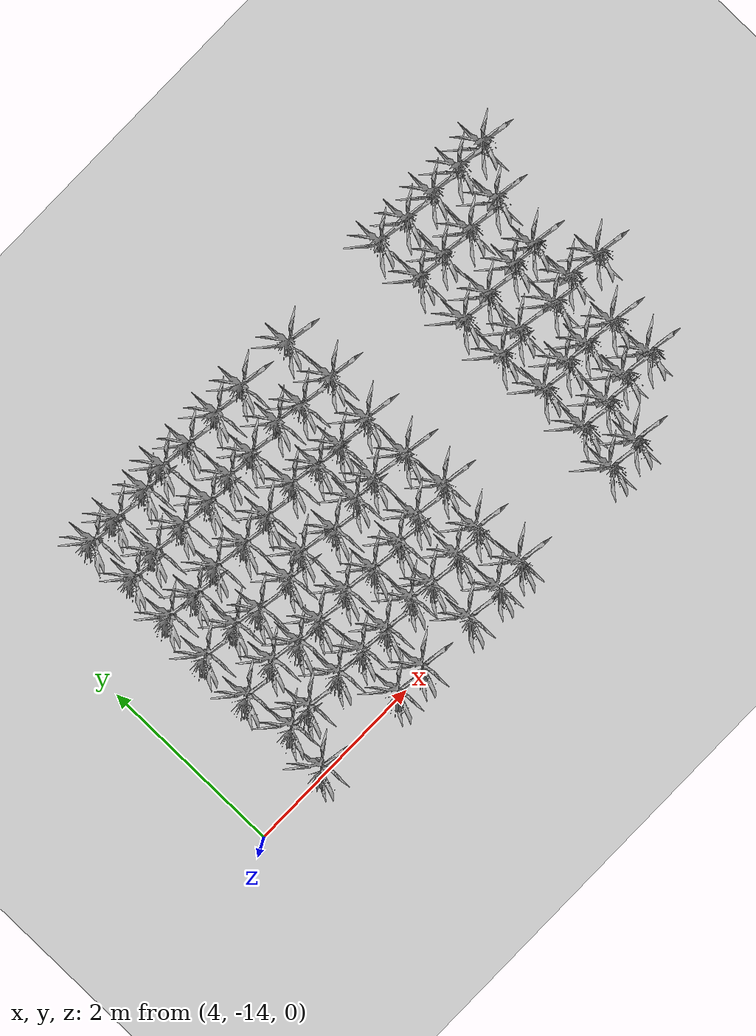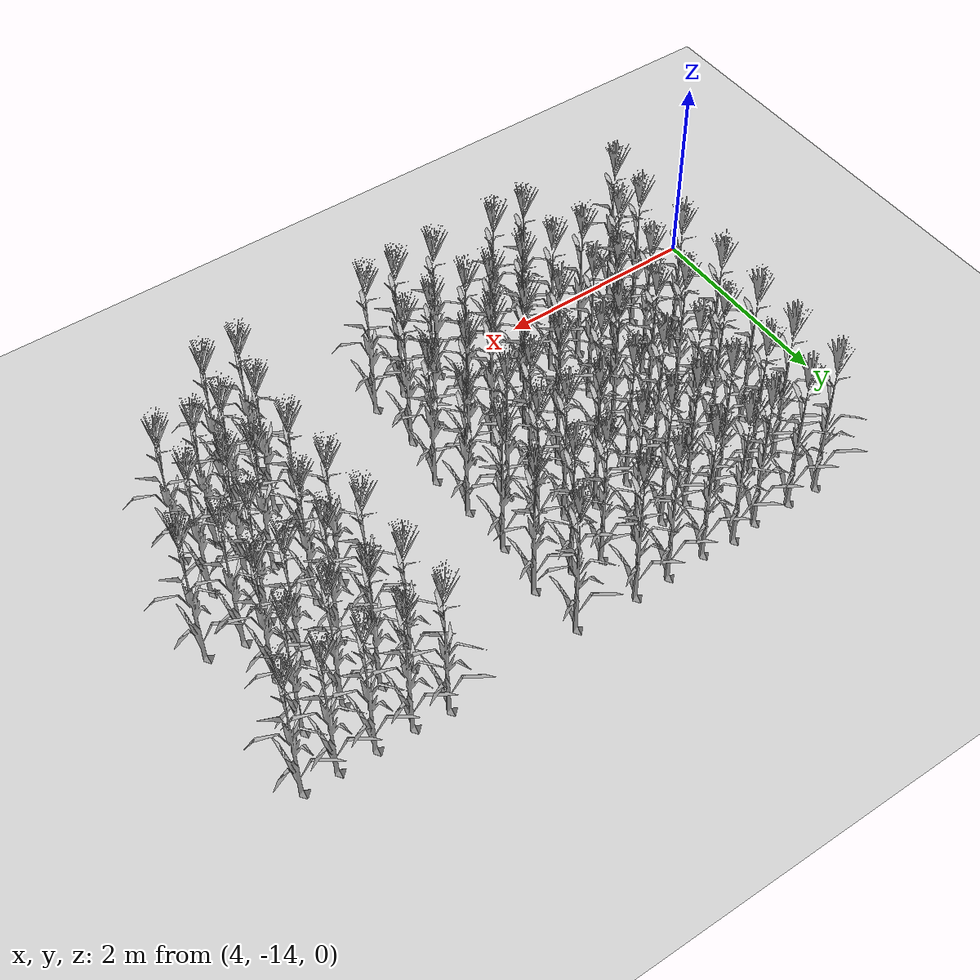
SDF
<sdf version="1.7">
 <world name="farmland_world">
  <model name="ground_plane">
   <static>1</static>
   <link name="link">
    <collision name="collision">
     <geometry><plane><normal>0 0 1</normal><size>40.0 40.0</size></plane></geometry>
     <surface><friction><ode><mu>100</mu><mu2>50</mu2></ode></friction></surface>
    </collision>
    <visual name="visual">
     <cast_shadows>0</cast_shadows>
     <geometry><plane><normal>0 0 1</normal><size>40.0 40.0</size></plane></geometry>
     <material>
      <script><uri>file://media/materials/scripts/gazebo.material</uri><name>Gazebo/Grey</name></script>
     </material>
    </visual>
   </link>
  </model>
  <model name="tree_3_17">
   <static>1</static>
   <link name="link">
    <collision name="collision">
     <geometry><mesh><uri>model://Corn_low_poly/corn.obj</uri><scale>1 1 1</scale></mesh></geometry>
     <surface><friction><ode><mu>100</mu><mu2>50</mu2></ode></friction></surface>
    </collision>
    <visual name="visual">
     <geometry><mesh><uri>model://Corn_low_poly/corn.obj</uri><scale>1 1 1</scale></mesh></geometry>
    </visual>
   </link>
   <pose>4.991810377801045 -10.801920285262085 0 0 0 0</pose>
  </model>
  <model name="tree_3_18">
   <static>1</static>
   <link name="link">
    <collision name="collision">
     <geometry><mesh><uri>model://Corn_low_poly/corn.obj</uri><scale>1 1 1</scale></mesh></geometry>
     <surface><friction><ode><mu>100</mu><mu2>50</mu2></ode></friction></surface>
    </collision>
    <visual name="visual">
     <geometry><mesh><uri>model://Corn_low_poly/corn.obj</uri><scale>1 1 1</scale></mesh></geometry>
    </visual>
   </link>
   <pose>5.014223362123942 -11.323181069916757 0 0 0 0</pose>
  </model>
  <model name="tree_3_19">
   <static>1</static>
   <link name="link">
    <collision name="collision">
     <geometry><mesh><uri>model://Corn_low_poly/corn.obj</uri><scale>1 1 1</scale></mesh></geometry>
     <surface><friction><ode><mu>100</mu><mu2>50</mu2></ode></friction></surface>
    </collision>
    <visual name="visual">
     <geometry><mesh><uri>model://Corn_low_poly/corn.obj</uri><scale>1 1 1</scale></mesh></geometry>
    </visual>
   </link>
   <pose>4.977002538412344 -11.818061326801354 0 0 0 0</pose>
  </model>
  <model name="tree_3_20">
   <static>1</static>
   <link name="link">
    <collision name="collision">
     <geometry><mesh><uri>model://Corn_low_poly/corn.obj</uri><scale>1 1 1</scale></mesh></geometry>
     <surface><friction><ode><mu>100</mu><mu2>50</mu2></ode></friction></surface>
    </collision>
    <visual name="visual">
     <geometry><mesh><uri>model://Corn_low_poly/corn.obj</uri><scale>1 1 1</scale></mesh></geometry>
    </visual>
   </link>
   <pose>4.9503473289990865 -12.331253659682861 0 0 0 0</pose>
  </model>
  <model name="tree_3_21">
   <static>1</static>
   <link name="link">
    <collision name="collision">
     <geometry><mesh><uri>model://Corn_low_poly/corn.obj</uri><scale>1 1 1</scale></mesh></geometry>
     <surface><friction><ode><mu>100</mu><mu2>50</mu2></ode></friction></surface>
    </collision>
    <visual name="visual">
     <geometry><mesh><uri>model://Corn_low_poly/corn.obj</uri><scale>1 1 1</scale></mesh></geometry>
    </visual>
   </link>
   <pose>4.950692715688161 -12.877011293198573 0 0 0 0</pose>
  </model>
  <model name="tree_3_22">
   <static>1</static>
   <link name="link">
    <collision name="collision">
     <geometry><mesh><uri>model://Corn_low_poly/corn.obj</uri><scale>1 1 1</scale></mesh></geometry>
     <surface><friction><ode><mu>100</mu><mu2>50</mu2></ode></friction></surface>
    </collision>
    <visual name="visual">
     <geometry><mesh><uri>model://Corn_low_poly/corn.obj</uri><scale>1 1 1</scale></mesh></geometry>
    </visual>
   </link>
   <pose>5.0336981658699775 -13.384898444191366 0 0 0 0</pose>
  </model>
  <model name="tree_3_23">
   <static>1</static>
   <link name="link">
    <collision name="collision">
     <geometry><mesh><uri>model://Corn_low_poly/corn.obj</uri><scale>1 1 1</scale></mesh></geometry>
     <surface><friction><ode><mu>100</mu><mu2>50</mu2></ode></friction></surface>
    </collision>
    <visual name="visual">
     <geometry><mesh><uri>model://Corn_low_poly/corn.obj</uri><scale>1 1 1</scale></mesh></geometry>
    </visual>
   </link>
   <pose>4.950750571066764 -13.860084449998384 0 0 0 0</pose>
  </model>
  <model name="tree_3_47">
   <static>1</static>
   <link name="link">
    <collision name="collision">
     <geometry><mesh><uri>model://Corn_low_poly/corn.obj</uri><scale>1 1 1</scale></mesh></geometry>
     <surface><friction><ode><mu>100</mu><mu2>50</mu2></ode></friction></surface>
    </collision>
    <visual name="visual">
     <geometry><mesh><uri>model://Corn_low_poly/corn.obj</uri><scale>1 1 1</scale></mesh></geometry>
    </visual>
   </link>
   <pose>5.308392694446498 -10.807268321788406 0 0 0 0</pose>
  </model>
  <model name="tree_3_48">
   <static>1</static>
   <link name="link">
    <collision name="collision">
     <geometry><mesh><uri>model://Corn_low_poly/corn.obj</uri><scale>1 1 1</scale></mesh></geometry>
     <surface><friction><ode><mu>100</mu><mu2>50</mu2></ode></friction></surface>
    </collision>
    <visual name="visual">
     <geometry><mesh><uri>model://Corn_low_poly/corn.obj</uri><scale>1 1 1</scale></mesh></geometry>
    </visual>
   </link>
   <pose>5.330645024486984 -11.293162572722004 0 0 0 0</pose>
  </model>
  <model name="tree_3_49">
   <static>1</static>
   <link name="link">
    <collision name="collision">
     <geometry><mesh><uri>model://Corn_low_poly/corn.obj</uri><scale>1 1 1</scale></mesh></geometry>
     <surface><friction><ode><mu>100</mu><mu2>50</mu2></ode></friction></surface>
    </collision>
    <visual name="visual">
     <geometry><mesh><uri>model://Corn_low_poly/corn.obj</uri><scale>1 1 1</scale></mesh></geometry>
    </visual>
   </link>
   <pose>5.318751534027271 -11.858264309540829 0 0 0 0</pose>
  </model>
  <model name="tree_3_50">
   <static>1</static>
   <link name="link">
    <collision name="collision">
     <geometry><mesh><uri>model://Corn_low_poly/corn.obj</uri><scale>1 1 1</scale></mesh></geometry>
     <surface><friction><ode><mu>100</mu><mu2>50</mu2></ode></friction></surface>
    </collision>
    <visual name="visual">
     <geometry><mesh><uri>model://Corn_low_poly/corn.obj</uri><scale>1 1 1</scale></mesh></geometry>
    </visual>
   </link>
   <pose>5.362754126461763 -12.325831773841358 0 0 0 0</pose>
  </model>
  <model name="tree_3_51">
   <static>1</static>
   <link name="link">
    <collision name="collision">
     <geometry><mesh><uri>model://Corn_low_poly/corn.obj</uri><scale>1 1 1</scale></mesh></geometry>
     <surface><friction><ode><mu>100</mu><mu2>50</mu2></ode></friction></surface>
    </collision>
    <visual name="visual">
     <geometry><mesh><uri>model://Corn_low_poly/corn.obj</uri><scale>1 1 1</scale></mesh></geometry>
    </visual>
   </link>
   <pose>5.357382360147012 -12.814303457973542 0 0 0 0</pose>
  </model>
  <model name="tree_3_52">
   <static>1</static>
   <link name="link">
    <collision name="collision">
     <geometry><mesh><uri>model://Corn_low_poly/corn.obj</uri><scale>1 1 1</scale></mesh></geometry>
     <surface><friction><ode><mu>100</mu><mu2>50</mu2></ode></friction></surface>
    </collision>
    <visual name="visual">
     <geometry><mesh><uri>model://Corn_low_poly/corn.obj</uri><scale>1 1 1</scale></mesh></geometry>
    </visual>
   </link>
   <pose>5.282615396063005 -13.368771505711765 0 0 0 0</pose>
  </model>
  <model name="tree_3_77">
   <static>1</static>
   <link name="link">
    <collision name="collision">
     <geometry><mesh><uri>model://Corn_low_poly/corn.obj</uri><scale>1 1 1</scale></mesh></geometry>
     <surface><friction><ode><mu>100</mu><mu2>50</mu2></ode></friction></surface>
    </collision>
    <visual name="visual">
     <geometry><mesh><uri>model://Corn_low_poly/corn.obj</uri><scale>1 1 1</scale></mesh></geometry>
    </visual>
   </link>
   <pose>5.699194725487803 -10.814430159523859 0 0 0 0</pose>
  </model>
  <model name="tree_3_78">
   <static>1</static>
   <link name="link">
    <collision name="collision">
     <geometry><mesh><uri>model://Corn_low_poly/corn.obj</uri><scale>1 1 1</scale></mesh></geometry>
     <surface><friction><ode><mu>100</mu><mu2>50</mu2></ode></friction></surface>
    </collision>
    <visual name="visual">
     <geometry><mesh><uri>model://Corn_low_poly/corn.obj</uri><scale>1 1 1</scale></mesh></geometry>
    </visual>
   </link>
   <pose>5.702011702437719 -11.305197147126453 0 0 0 0</pose>
  </model>
  <model name="tree_3_79">
   <static>1</static>
   <link name="link">
    <collision name="collision">
     <geometry><mesh><uri>model://Corn_low_poly/corn.obj</uri><scale>1 1 1</scale></mesh></geometry>
     <surface><friction><ode><mu>100</mu><mu2>50</mu2></ode></friction></surface>
    </collision>
    <visual name="visual">
     <geometry><mesh><uri>model://Corn_low_poly/corn.obj</uri><scale>1 1 1</scale></mesh></geometry>
    </visual>
   </link>
   <pose>5.63217351149998 -11.809568295660057 0 0 0 0</pose>
  </model>
  <model name="tree_3_80">
   <static>1</static>
   <link name="link">
    <collision name="collision">
     <geometry><mesh><uri>model://Corn_low_poly/corn.obj</uri><scale>1 1 1</scale></mesh></geometry>
     <surface><friction><ode><mu>100</mu><mu2>50</mu2></ode></friction></surface>
    </collision>
    <visual name="visual">
     <geometry><mesh><uri>model://Corn_low_poly/corn.obj</uri><scale>1 1 1</scale></mesh></geometry>
    </visual>
   </link>
   <pose>5.632325296627728 -12.39073160513524 0 0 0 0</pose>
  </model>
  <model name="tree_3_81">
   <static>1</static>
   <link name="link">
    <collision name="collision">
     <geometry><mesh><uri>model://Corn_low_poly/corn.obj</uri><scale>1 1 1</scale></mesh></geometry>
     <surface><friction><ode><mu>100</mu><mu2>50</mu2></ode></friction></surface>
    </collision>
    <visual name="visual">
     <geometry><mesh><uri>model://Corn_low_poly/corn.obj</uri><scale>1 1 1</scale></mesh></geometry>
    </visual>
   </link>
   <pose>5.667837422370501 -12.881631584437157 0 0 0 0</pose>
  </model>
  <model name="tree_3_82">
   <static>1</static>
   <link name="link">
    <collision name="collision">
     <geometry><mesh><uri>model://Corn_low_poly/corn.obj</uri><scale>1 1 1</scale></mesh></geometry>
     <surface><friction><ode><mu>100</mu><mu2>50</mu2></ode></friction></surface>
    </collision>
    <visual name="visual">
     <geometry><mesh><uri>model://Corn_low_poly/corn.obj</uri><scale>1 1 1</scale></mesh></geometry>
    </visual>
   </link>
   <pose>5.715537508603175 -13.351619111483307 0 0 0 0</pose>
  </model>
  <model name="tree_3_107">
   <static>1</static>
   <link name="link">
    <collision name="collision">
     <geometry><mesh><uri>model://Corn_low_poly/corn.obj</uri><scale>1 1 1</scale></mesh></geometry>
     <surface><friction><ode><mu>100</mu><mu2>50</mu2></ode></friction></surface>
    </collision>
    <visual name="visual">
     <geometry><mesh><uri>model://Corn_low_poly/corn.obj</uri><scale>1 1 1</scale></mesh></geometry>
    </visual>
   </link>
   <pose>5.97405888381481 -10.77141149884283 0 0 0 0</pose>
  </model>
  <model name="tree_3_108">
   <static>1</static>
   <link name="link">
    <collision name="collision">
     <geometry><mesh><uri>model://Corn_low_poly/corn.obj</uri><scale>1 1 1</scale></mesh></geometry>
     <surface><friction><ode><mu>100</mu><mu2>50</mu2></ode></friction></surface>
    </collision>
    <visual name="visual">
     <geometry><mesh><uri>model://Corn_low_poly/corn.obj</uri><scale>1 1 1</scale></mesh></geometry>
    </visual>
   </link>
   <pose>6.049854315971364 -11.332023836555653 0 0 0 0</pose>
  </model>
  <model name="tree_3_109">
   <static>1</static>
   <link name="link">
    <collision name="collision">
     <geometry><mesh><uri>model://Corn_low_poly/corn.obj</uri><scale>1 1 1</scale></mesh></geometry>
     <surface><friction><ode><mu>100</mu><mu2>50</mu2></ode></friction></surface>
    </collision>
    <visual name="visual">
     <geometry><mesh><uri>model://Corn_low_poly/corn.obj</uri><scale>1 1 1</scale></mesh></geometry>
    </visual>
   </link>
   <pose>5.9910026470136675 -11.853997949803375 0 0 0 0</pose>
  </model>
  <model name="tree_3_110">
   <static>1</static>
   <link name="link">
    <collision name="collision">
     <geometry><mesh><uri>model://Corn_low_poly/corn.obj</uri><scale>1 1 1</scale></mesh></geometry>
     <surface><friction><ode><mu>100</mu><mu2>50</mu2></ode></friction></surface>
    </collision>
    <visual name="visual">
     <geometry><mesh><uri>model://Corn_low_poly/corn.obj</uri><scale>1 1 1</scale></mesh></geometry>
    </visual>
   </link>
   <pose>6.04333882807703 -12.391284043172151 0 0 0 0</pose>
  </model>
  <model name="tree_3_111">
   <static>1</static>
   <link name="link">
    <collision name="collision">
     <geometry><mesh><uri>model://Corn_low_poly/corn.obj</uri><scale>1 1 1</scale></mesh></geometry>
     <surface><friction><ode><mu>100</mu><mu2>50</mu2></ode></friction></surface>
    </collision>
    <visual name="visual">
     <geometry><mesh><uri>model://Corn_low_poly/corn.obj</uri><scale>1 1 1</scale></mesh></geometry>
    </visual>
   </link>
   <pose>5.952118408383442 -12.87319933405998 0 0 0 0</pose>
  </model>
  <model name="tree_3_112">
   <static>1</static>
   <link name="link">
    <collision name="collision">
     <geometry><mesh><uri>model://Corn_low_poly/corn.obj</uri><scale>1 1 1</scale></mesh></geometry>
     <surface><friction><ode><mu>100</mu><mu2>50</mu2></ode></friction></surface>
    </collision>
    <visual name="visual">
     <geometry><mesh><uri>model://Corn_low_poly/corn.obj</uri><scale>1 1 1</scale></mesh></geometry>
    </visual>
   </link>
   <pose>6.033263759829188 -13.362035763795696 0 0 0 0</pose>
  </model>
  <model name="tree_3_113">
   <static>1</static>
   <link name="link">
    <collision name="collision">
     <geometry><mesh><uri>model://Corn_low_poly/corn.obj</uri><scale>1 1 1</scale></mesh></geometry>
     <surface><friction><ode><mu>100</mu><mu2>50</mu2></ode></friction></surface>
    </collision>
    <visual name="visual">
     <geometry><mesh><uri>model://Corn_low_poly/corn.obj</uri><scale>1 1 1</scale></mesh></geometry>
    </visual>
   </link>
   <pose>5.982979951996452 -13.884575423420232 0 0 0 0</pose>
  </model>
  <model name="tree_3_137">
   <static>1</static>
   <link name="link">
    <collision name="collision">
     <geometry><mesh><uri>model://Corn_low_poly/corn.obj</uri><scale>1 1 1</scale></mesh></geometry>
     <surface><friction><ode><mu>100</mu><mu2>50</mu2></ode></friction></surface>
    </collision>
    <visual name="visual">
     <geometry><mesh><uri>model://Corn_low_poly/corn.obj</uri><scale>1 1 1</scale></mesh></geometry>
    </visual>
   </link>
   <pose>6.296752215696947 -10.804130119036463 0 0 0 0</pose>
  </model>
  <model name="tree_3_138">
   <static>1</static>
   <link name="link">
    <collision name="collision">
     <geometry><mesh><uri>model://Corn_low_poly/corn.obj</uri><scale>1 1 1</scale></mesh></geometry>
     <surface><friction><ode><mu>100</mu><mu2>50</mu2></ode></friction></surface>
    </collision>
    <visual name="visual">
     <geometry><mesh><uri>model://Corn_low_poly/corn.obj</uri><scale>1 1 1</scale></mesh></geometry>
    </visual>
   </link>
   <pose>6.352911717927401 -11.295824839920883 0 0 0 0</pose>
  </model>
  <model name="tree_3_139">
   <static>1</static>
   <link name="link">
    <collision name="collision">
     <geometry><mesh><uri>model://Corn_low_poly/corn.obj</uri><scale>1 1 1</scale></mesh></geometry>
     <surface><friction><ode><mu>100</mu><mu2>50</mu2></ode></friction></surface>
    </collision>
    <visual name="visual">
     <geometry><mesh><uri>model://Corn_low_poly/corn.obj</uri><scale>1 1 1</scale></mesh></geometry>
    </visual>
   </link>
   <pose>6.329746062965937 -11.824921885433172 0 0 0 0</pose>
  </model>
  <model name="tree_3_140">
   <static>1</static>
   <link name="link">
    <collision name="collision">
     <geometry><mesh><uri>model://Corn_low_poly/corn.obj</uri><scale>1 1 1</scale></mesh></geometry>
     <surface><friction><ode><mu>100</mu><mu2>50</mu2></ode></friction></surface>
    </collision>
    <visual name="visual">
     <geometry><mesh><uri>model://Corn_low_poly/corn.obj</uri><scale>1 1 1</scale></mesh></geometry>
    </visual>
   </link>
   <pose>6.306333069224443 -12.299947797094035 0 0 0 0</pose>
  </model>
  <model name="tree_3_141">
   <static>1</static>
   <link name="link">
    <collision name="collision">
     <geometry><mesh><uri>model://Corn_low_poly/corn.obj</uri><scale>1 1 1</scale></mesh></geometry>
     <surface><friction><ode><mu>100</mu><mu2>50</mu2></ode></friction></surface>
    </collision>
    <visual name="visual">
     <geometry><mesh><uri>model://Corn_low_poly/corn.obj</uri><scale>1 1 1</scale></mesh></geometry>
    </visual>
   </link>
   <pose>6.336687806261451 -12.85269403164194 0 0 0 0</pose>
  </model>
  <model name="tree_3_142">
   <static>1</static>
   <link name="link">
    <collision name="collision">
     <geometry><mesh><uri>model://Corn_low_poly/corn.obj</uri><scale>1 1 1</scale></mesh></geometry>
     <surface><friction><ode><mu>100</mu><mu2>50</mu2></ode></friction></surface>
    </collision>
    <visual name="visual">
     <geometry><mesh><uri>model://Corn_low_poly/corn.obj</uri><scale>1 1 1</scale></mesh></geometry>
    </visual>
   </link>
   <pose>6.34642582683934 -13.388017618873578 0 0 0 0</pose>
  </model>
  <model name="tree_3_143">
   <static>1</static>
   <link name="link">
    <collision name="collision">
     <geometry><mesh><uri>model://Corn_low_poly/corn.obj</uri><scale>1 1 1</scale></mesh></geometry>
     <surface><friction><ode><mu>100</mu><mu2>50</mu2></ode></friction></surface>
    </collision>
    <visual name="visual">
     <geometry><mesh><uri>model://Corn_low_poly/corn.obj</uri><scale>1 1 1</scale></mesh></geometry>
    </visual>
   </link>
   <pose>6.318976695536219 -13.883098035852234 0 0 0 0</pose>
  </model>
  <model name="tree_3_167">
   <static>1</static>
   <link name="link">
    <collision name="collision">
     <geometry><mesh><uri>model://Corn_low_poly/corn.obj</uri><scale>1 1 1</scale></mesh></geometry>
     <surface><friction><ode><mu>100</mu><mu2>50</mu2></ode></friction></surface>
    </collision>
    <visual name="visual">
     <geometry><mesh><uri>model://Corn_low_poly/corn.obj</uri><scale>1 1 1</scale></mesh></geometry>
    </visual>
   </link>
   <pose>6.692545340302512 -10.790447179709558 0 0 0 0</pose>
  </model>
  <model name="tree_3_168">
   <static>1</static>
   <link name="link">
    <collision name="collision">
     <geometry><mesh><uri>model://Corn_low_poly/corn.obj</uri><scale>1 1 1</scale></mesh></geometry>
     <surface><friction><ode><mu>100</mu><mu2>50</mu2></ode></friction></surface>
    </collision>
    <visual name="visual">
     <geometry><mesh><uri>model://Corn_low_poly/corn.obj</uri><scale>1 1 1</scale></mesh></geometry>
    </visual>
   </link>
   <pose>6.653387967200039 -11.29838713172166 0 0 0 0</pose>
  </model>
  <model name="tree_3_169">
   <static>1</static>
   <link name="link">
    <collision name="collision">
     <geometry><mesh><uri>model://Corn_low_poly/corn.obj</uri><scale>1 1 1</scale></mesh></geometry>
     <surface><friction><ode><mu>100</mu><mu2>50</mu2></ode></friction></surface>
    </collision>
    <visual name="visual">
     <geometry><mesh><uri>model://Corn_low_poly/corn.obj</uri><scale>1 1 1</scale></mesh></geometry>
    </visual>
   </link>
   <pose>6.715400173645544 -11.779230180569327 0 0 0 0</pose>
  </model>
  <model name="tree_3_170">
   <static>1</static>
   <link name="link">
    <collision name="collision">
     <geometry><mesh><uri>model://Corn_low_poly/corn.obj</uri><scale>1 1 1</scale></mesh></geometry>
     <surface><friction><ode><mu>100</mu><mu2>50</mu2></ode></friction></surface>
    </collision>
    <visual name="visual">
     <geometry><mesh><uri>model://Corn_low_poly/corn.obj</uri><scale>1 1 1</scale></mesh></geometry>
    </visual>
   </link>
   <pose>6.68220706530858 -12.38246470534317 0 0 0 0</pose>
  </model>
  <model name="tree_3_171">
   <static>1</static>
   <link name="link">
    <collision name="collision">
     <geometry><mesh><uri>model://Corn_low_poly/corn.obj</uri><scale>1 1 1</scale></mesh></geometry>
     <surface><friction><ode><mu>100</mu><mu2>50</mu2></ode></friction></surface>
    </collision>
    <visual name="visual">
     <geometry><mesh><uri>model://Corn_low_poly/corn.obj</uri><scale>1 1 1</scale></mesh></geometry>
    </visual>
   </link>
   <pose>6.67208784742084 -12.903153677015231 0 0 0 0</pose>
  </model>
  <model name="tree_3_172">
   <static>1</static>
   <link name="link">
    <collision name="collision">
     <geometry><mesh><uri>model://Corn_low_poly/corn.obj</uri><scale>1 1 1</scale></mesh></geometry>
     <surface><friction><ode><mu>100</mu><mu2>50</mu2></ode></friction></surface>
    </collision>
    <visual name="visual">
     <geometry><mesh><uri>model://Corn_low_poly/corn.obj</uri><scale>1 1 1</scale></mesh></geometry>
    </visual>
   </link>
   <pose>6.71754528205892 -13.35546442116975 0 0 0 0</pose>
  </model>
  <model name="tree_3_197">
   <static>1</static>
   <link name="link">
    <collision name="collision">
     <geometry><mesh><uri>model://Corn_low_poly/corn.obj</uri><scale>1 1 1</scale></mesh></geometry>
     <surface><friction><ode><mu>100</mu><mu2>50</mu2></ode></friction></surface>
    </collision>
    <visual name="visual">
     <geometry><mesh><uri>model://Corn_low_poly/corn.obj</uri><scale>1 1 1</scale></mesh></geometry>
    </visual>
   </link>
   <pose>7.048284351239027 -10.783967141145826 0 0 0 0</pose>
  </model>
  <model name="tree_3_198">
   <static>1</static>
   <link name="link">
    <collision name="collision">
     <geometry><mesh><uri>model://Corn_low_poly/corn.obj</uri><scale>1 1 1</scale></mesh></geometry>
     <surface><friction><ode><mu>100</mu><mu2>50</mu2></ode></friction></surface>
    </collision>
    <visual name="visual">
     <geometry><mesh><uri>model://Corn_low_poly/corn.obj</uri><scale>1 1 1</scale></mesh></geometry>
    </visual>
   </link>
   <pose>7.0409571057652895 -11.265642489456962 0 0 0 0</pose>
  </model>
  <model name="tree_3_199">
   <static>1</static>
   <link name="link">
    <collision name="collision">
     <geometry><mesh><uri>model://Corn_low_poly/corn.obj</uri><scale>1 1 1</scale></mesh></geometry>
     <surface><friction><ode><mu>100</mu><mu2>50</mu2></ode></friction></surface>
    </collision>
    <visual name="visual">
     <geometry><mesh><uri>model://Corn_low_poly/corn.obj</uri><scale>1 1 1</scale></mesh></geometry>
    </visual>
   </link>
   <pose>7.016898108588384 -11.837719934483511 0 0 0 0</pose>
  </model>
  <model name="tree_3_200">
   <static>1</static>
   <link name="link">
    <collision name="collision">
     <geometry><mesh><uri>model://Corn_low_poly/corn.obj</uri><scale>1 1 1</scale></mesh></geometry>
     <surface><friction><ode><mu>100</mu><mu2>50</mu2></ode></friction></surface>
    </collision>
    <visual name="visual">
     <geometry><mesh><uri>model://Corn_low_poly/corn.obj</uri><scale>1 1 1</scale></mesh></geometry>
    </visual>
   </link>
   <pose>7.0372474483423035 -12.313030073442338 0 0 0 0</pose>
  </model>
  <model name="tree_3_201">
   <static>1</static>
   <link name="link">
    <collision name="collision">
     <geometry><mesh><uri>model://Corn_low_poly/corn.obj</uri><scale>1 1 1</scale></mesh></geometry>
     <surface><friction><ode><mu>100</mu><mu2>50</mu2></ode></friction></surface>
    </collision>
    <visual name="visual">
     <geometry><mesh><uri>model://Corn_low_poly/corn.obj</uri><scale>1 1 1</scale></mesh></geometry>
    </visual>
   </link>
   <pose>7.026574932804751 -12.902196662440005 0 0 0 0</pose>
  </model>
  <model name="tree_3_202">
   <static>1</static>
   <link name="link">
    <collision name="collision">
     <geometry><mesh><uri>model://Corn_low_poly/corn.obj</uri><scale>1 1 1</scale></mesh></geometry>
     <surface><friction><ode><mu>100</mu><mu2>50</mu2></ode></friction></surface>
    </collision>
    <visual name="visual">
     <geometry><mesh><uri>model://Corn_low_poly/corn.obj</uri><scale>1 1 1</scale></mesh></geometry>
    </visual>
   </link>
   <pose>6.95668883317593 -13.396746936701865 0 0 0 0</pose>
  </model>
  <model name="tree_3_203">
   <static>1</static>
   <link name="link">
    <collision name="collision">
     <geometry><mesh><uri>model://Corn_low_poly/corn.obj</uri><scale>1 1 1</scale></mesh></geometry>
     <surface><friction><ode><mu>100</mu><mu2>50</mu2></ode></friction></surface>
    </collision>
    <visual name="visual">
     <geometry><mesh><uri>model://Corn_low_poly/corn.obj</uri><scale>1 1 1</scale></mesh></geometry>
    </visual>
   </link>
   <pose>6.969856923294205 -13.882608581090102 0 0 0 0</pose>
  </model>
  <model name="tree_3_228">
   <static>1</static>
   <link name="link">
    <collision name="collision">
     <geometry><mesh><uri>model://Corn_low_poly/corn.obj</uri><scale>1 1 1</scale></mesh></geometry>
     <surface><friction><ode><mu>100</mu><mu2>50</mu2></ode></friction></surface>
    </collision>
    <visual name="visual">
     <geometry><mesh><uri>model://Corn_low_poly/corn.obj</uri><scale>1 1 1</scale></mesh></geometry>
    </visual>
   </link>
   <pose>7.324519529889783 -11.32503022356567 0 0 0 0</pose>
  </model>
  <model name="tree_3_229">
   <static>1</static>
   <link name="link">
    <collision name="collision">
     <geometry><mesh><uri>model://Corn_low_poly/corn.obj</uri><scale>1 1 1</scale></mesh></geometry>
     <surface><friction><ode><mu>100</mu><mu2>50</mu2></ode></friction></surface>
    </collision>
    <visual name="visual">
     <geometry><mesh><uri>model://Corn_low_poly/corn.obj</uri><scale>1 1 1</scale></mesh></geometry>
    </visual>
   </link>
   <pose>7.2952152230185305 -11.853968094100576 0 0 0 0</pose>
  </model>
  <model name="tree_3_230">
   <static>1</static>
   <link name="link">
    <collision name="collision">
     <geometry><mesh><uri>model://Corn_low_poly/corn.obj</uri><scale>1 1 1</scale></mesh></geometry>
     <surface><friction><ode><mu>100</mu><mu2>50</mu2></ode></friction></surface>
    </collision>
    <visual name="visual">
     <geometry><mesh><uri>model://Corn_low_poly/corn.obj</uri><scale>1 1 1</scale></mesh></geometry>
    </visual>
   </link>
   <pose>7.291862185727493 -12.302812014281441 0 0 0 0</pose>
  </model>
  <model name="tree_3_231">
   <static>1</static>
   <link name="link">
    <collision name="collision">
     <geometry><mesh><uri>model://Corn_low_poly/corn.obj</uri><scale>1 1 1</scale></mesh></geometry>
     <surface><friction><ode><mu>100</mu><mu2>50</mu2></ode></friction></surface>
    </collision>
    <visual name="visual">
     <geometry><mesh><uri>model://Corn_low_poly/corn.obj</uri><scale>1 1 1</scale></mesh></geometry>
    </visual>
   </link>
   <pose>7.325524894881288 -12.842875509523537 0 0 0 0</pose>
  </model>
  <model name="tree_3_232">
   <static>1</static>
   <link name="link">
    <collision name="collision">
     <geometry><mesh><uri>model://Corn_low_poly/corn.obj</uri><scale>1 1 1</scale></mesh></geometry>
     <surface><friction><ode><mu>100</mu><mu2>50</mu2></ode></friction></surface>
    </collision>
    <visual name="visual">
     <geometry><mesh><uri>model://Corn_low_poly/corn.obj</uri><scale>1 1 1</scale></mesh></geometry>
    </visual>
   </link>
   <pose>7.3278757823398255 -13.382409176571215 0 0 0 0</pose>
  </model>
  <model name="tree_3_233">
   <static>1</static>
   <link name="link">
    <collision name="collision">
     <geometry><mesh><uri>model://Corn_low_poly/corn.obj</uri><scale>1 1 1</scale></mesh></geometry>
     <surface><friction><ode><mu>100</mu><mu2>50</mu2></ode></friction></surface>
    </collision>
    <visual name="visual">
     <geometry><mesh><uri>model://Corn_low_poly/corn.obj</uri><scale>1 1 1</scale></mesh></geometry>
    </visual>
   </link>
   <pose>7.372871783848213 -13.88392934288963 0 0 0 0</pose>
  </model>
  <model name="tree_3_257">
   <static>1</static>
   <link name="link">
    <collision name="collision">
     <geometry><mesh><uri>model://Corn_low_poly/corn.obj</uri><scale>1 1 1</scale></mesh></geometry>
     <surface><friction><ode><mu>100</mu><mu2>50</mu2></ode></friction></surface>
    </collision>
    <visual name="visual">
     <geometry><mesh><uri>model://Corn_low_poly/corn.obj</uri><scale>1 1 1</scale></mesh></geometry>
    </visual>
   </link>
   <pose>7.655187912848837 -10.816236371068543 0 0 0 0</pose>
  </model>
  <model name="tree_3_258">
   <static>1</static>
   <link name="link">
    <collision name="collision">
     <geometry><mesh><uri>model://Corn_low_poly/corn.obj</uri><scale>1 1 1</scale></mesh></geometry>
     <surface><friction><ode><mu>100</mu><mu2>50</mu2></ode></friction></surface>
    </collision>
    <visual name="visual">
     <geometry><mesh><uri>model://Corn_low_poly/corn.obj</uri><scale>1 1 1</scale></mesh></geometry>
    </visual>
   </link>
   <pose>7.707024179202017 -11.33832242901405 0 0 0 0</pose>
  </model>
  <model name="tree_3_259">
   <static>1</static>
   <link name="link">
    <collision name="collision">
     <geometry><mesh><uri>model://Corn_low_poly/corn.obj</uri><scale>1 1 1</scale></mesh></geometry>
     <surface><friction><ode><mu>100</mu><mu2>50</mu2></ode></friction></surface>
    </collision>
    <visual name="visual">
     <geometry><mesh><uri>model://Corn_low_poly/corn.obj</uri><scale>1 1 1</scale></mesh></geometry>
    </visual>
   </link>
   <pose>7.658135776180631 -11.85847986115979 0 0 0 0</pose>
  </model>
  <model name="tree_3_260">
   <static>1</static>
   <link name="link">
    <collision name="collision">
     <geometry><mesh><uri>model://Corn_low_poly/corn.obj</uri><scale>1 1 1</scale></mesh></geometry>
     <surface><friction><ode><mu>100</mu><mu2>50</mu2></ode></friction></surface>
    </collision>
    <visual name="visual">
     <geometry><mesh><uri>model://Corn_low_poly/corn.obj</uri><scale>1 1 1</scale></mesh></geometry>
    </visual>
   </link>
   <pose>7.680042173804583 -12.361551653619518 0 0 0 0</pose>
  </model>
  <model name="tree_3_261">
   <static>1</static>
   <link name="link">
    <collision name="collision">
     <geometry><mesh><uri>model://Corn_low_poly/corn.obj</uri><scale>1 1 1</scale></mesh></geometry>
     <surface><friction><ode><mu>100</mu><mu2>50</mu2></ode></friction></surface>
    </collision>
    <visual name="visual">
     <geometry><mesh><uri>model://Corn_low_poly/corn.obj</uri><scale>1 1 1</scale></mesh></geometry>
    </visual>
   </link>
   <pose>7.7195450797908505 -12.825563805246729 0 0 0 0</pose>
  </model>
  <model name="tree_3_262">
   <static>1</static>
   <link name="link">
    <collision name="collision">
     <geometry><mesh><uri>model://Corn_low_poly/corn.obj</uri><scale>1 1 1</scale></mesh></geometry>
     <surface><friction><ode><mu>100</mu><mu2>50</mu2></ode></friction></surface>
    </collision>
    <visual name="visual">
     <geometry><mesh><uri>model://Corn_low_poly/corn.obj</uri><scale>1 1 1</scale></mesh></geometry>
    </visual>
   </link>
   <pose>7.636315434466835 -13.33918378131594 0 0 0 0</pose>
  </model>
  <model name="tree_3_263">
   <static>1</static>
   <link name="link">
    <collision name="collision">
     <geometry><mesh><uri>model://Corn_low_poly/corn.obj</uri><scale>1 1 1</scale></mesh></geometry>
     <surface><friction><ode><mu>100</mu><mu2>50</mu2></ode></friction></surface>
    </collision>
    <visual name="visual">
     <geometry><mesh><uri>model://Corn_low_poly/corn.obj</uri><scale>1 1 1</scale></mesh></geometry>
    </visual>
   </link>
   <pose>7.692204499611819 -13.85876486785351 0 0 0 0</pose>
  </model>
  <model name="tree_3_287">
   <static>1</static>
   <link name="link">
    <collision name="collision">
     <geometry><mesh><uri>model://Corn_low_poly/corn.obj</uri><scale>1 1 1</scale></mesh></geometry>
     <surface><friction><ode><mu>100</mu><mu2>50</mu2></ode></friction></surface>
    </collision>
    <visual name="visual">
     <geometry><mesh><uri>model://Corn_low_poly/corn.obj</uri><scale>1 1 1</scale></mesh></geometry>
    </visual>
   </link>
   <pose>8.95804133072157 -10.77441646825714 0 0 0 0</pose>
  </model>
  <model name="tree_3_288">
   <static>1</static>
   <link name="link">
    <collision name="collision">
     <geometry><mesh><uri>model://Corn_low_poly/corn.obj</uri><scale>1 1 1</scale></mesh></geometry>
     <surface><friction><ode><mu>100</mu><mu2>50</mu2></ode></friction></surface>
    </collision>
    <visual name="visual">
     <geometry><mesh><uri>model://Corn_low_poly/corn.obj</uri><scale>1 1 1</scale></mesh></geometry>
    </visual>
   </link>
   <pose>8.982350363374414 -11.287284698190726 0 0 0 0</pose>
  </model>
  <model name="tree_3_289">
   <static>1</static>
   <link name="link">
    <collision name="collision">
     <geometry><mesh><uri>model://Corn_low_poly/corn.obj</uri><scale>1 1 1</scale></mesh></geometry>
     <surface><friction><ode><mu>100</mu><mu2>50</mu2></ode></friction></surface>
    </collision>
    <visual name="visual">
     <geometry><mesh><uri>model://Corn_low_poly/corn.obj</uri><scale>1 1 1</scale></mesh></geometry>
    </visual>
   </link>
   <pose>8.985811298086423 -11.870253494101586 0 0 0 0</pose>
  </model>
  <model name="tree_3_290">
   <static>1</static>
   <link name="link">
    <collision name="collision">
     <geometry><mesh><uri>model://Corn_low_poly/corn.obj</uri><scale>1 1 1</scale></mesh></geometry>
     <surface><friction><ode><mu>100</mu><mu2>50</mu2></ode></friction></surface>
    </collision>
    <visual name="visual">
     <geometry><mesh><uri>model://Corn_low_poly/corn.obj</uri><scale>1 1 1</scale></mesh></geometry>
    </visual>
   </link>
   <pose>8.998625277594856 -12.365362905402137 0 0 0 0</pose>
  </model>
  <model name="tree_3_291">
   <static>1</static>
   <link name="link">
    <collision name="collision">
     <geometry><mesh><uri>model://Corn_low_poly/corn.obj</uri><scale>1 1 1</scale></mesh></geometry>
     <surface><friction><ode><mu>100</mu><mu2>50</mu2></ode></friction></surface>
    </collision>
    <visual name="visual">
     <geometry><mesh><uri>model://Corn_low_poly/corn.obj</uri><scale>1 1 1</scale></mesh></geometry>
    </visual>
   </link>
   <pose>9.047471901468073 -12.882473365147883 0 0 0 0</pose>
  </model>
  <model name="tree_3_292">
   <static>1</static>
   <link name="link">
    <collision name="collision">
     <geometry><mesh><uri>model://Corn_low_poly/corn.obj</uri><scale>1 1 1</scale></mesh></geometry>
     <surface><friction><ode><mu>100</mu><mu2>50</mu2></ode></friction></surface>
    </collision>
    <visual name="visual">
     <geometry><mesh><uri>model://Corn_low_poly/corn.obj</uri><scale>1 1 1</scale></mesh></geometry>
    </visual>
   </link>
   <pose>9.04900865753651 -13.40197333627647 0 0 0 0</pose>
  </model>
  <model name="tree_3_293">
   <static>1</static>
   <link name="link">
    <collision name="collision">
     <geometry><mesh><uri>model://Corn_low_poly/corn.obj</uri><scale>1 1 1</scale></mesh></geometry>
     <surface><friction><ode><mu>100</mu><mu2>50</mu2></ode></friction></surface>
    </collision>
    <visual name="visual">
     <geometry><mesh><uri>model://Corn_low_poly/corn.obj</uri><scale>1 1 1</scale></mesh></geometry>
    </visual>
   </link>
   <pose>8.951614742752257 -13.85980402214944 0 0 0 0</pose>
  </model>
  <model name="tree_3_317">
   <static>1</static>
   <link name="link">
    <collision name="collision">
     <geometry><mesh><uri>model://Corn_low_poly/corn.obj</uri><scale>1 1 1</scale></mesh></geometry>
     <surface><friction><ode><mu>100</mu><mu2>50</mu2></ode></friction></surface>
    </collision>
    <visual name="visual">
     <geometry><mesh><uri>model://Corn_low_poly/corn.obj</uri><scale>1 1 1</scale></mesh></geometry>
    </visual>
   </link>
   <pose>9.287975131821051 -10.80691574224447 0 0 0 0</pose>
  </model>
  <model name="tree_3_318">
   <static>1</static>
   <link name="link">
    <collision name="collision">
     <geometry><mesh><uri>model://Corn_low_poly/corn.obj</uri><scale>1 1 1</scale></mesh></geometry>
     <surface><friction><ode><mu>100</mu><mu2>50</mu2></ode></friction></surface>
    </collision>
    <visual name="visual">
     <geometry><mesh><uri>model://Corn_low_poly/corn.obj</uri><scale>1 1 1</scale></mesh></geometry>
    </visual>
   </link>
   <pose>9.284541568650289 -11.29428433642754 0 0 0 0</pose>
  </model>
  <model name="tree_3_319">
   <static>1</static>
   <link name="link">
    <collision name="collision">
     <geometry><mesh><uri>model://Corn_low_poly/corn.obj</uri><scale>1 1 1</scale></mesh></geometry>
     <surface><friction><ode><mu>100</mu><mu2>50</mu2></ode></friction></surface>
    </collision>
    <visual name="visual">
     <geometry><mesh><uri>model://Corn_low_poly/corn.obj</uri><scale>1 1 1</scale></mesh></geometry>
    </visual>
   </link>
   <pose>9.317983283985534 -11.866589387265124 0 0 0 0</pose>
  </model>
  <model name="tree_3_320">
   <static>1</static>
   <link name="link">
    <collision name="collision">
     <geometry><mesh><uri>model://Corn_low_poly/corn.obj</uri><scale>1 1 1</scale></mesh></geometry>
     <surface><friction><ode><mu>100</mu><mu2>50</mu2></ode></friction></surface>
    </collision>
    <visual name="visual">
     <geometry><mesh><uri>model://Corn_low_poly/corn.obj</uri><scale>1 1 1</scale></mesh></geometry>
    </visual>
   </link>
   <pose>9.281154569542425 -12.315681663310887 0 0 0 0</pose>
  </model>
  <model name="tree_3_321">
   <static>1</static>
   <link name="link">
    <collision name="collision">
     <geometry><mesh><uri>model://Corn_low_poly/corn.obj</uri><scale>1 1 1</scale></mesh></geometry>
     <surface><friction><ode><mu>100</mu><mu2>50</mu2></ode></friction></surface>
    </collision>
    <visual name="visual">
     <geometry><mesh><uri>model://Corn_low_poly/corn.obj</uri><scale>1 1 1</scale></mesh></geometry>
    </visual>
   </link>
   <pose>9.379030623755993 -12.854339368218778 0 0 0 0</pose>
  </model>
  <model name="tree_3_322">
   <static>1</static>
   <link name="link">
    <collision name="collision">
     <geometry><mesh><uri>model://Corn_low_poly/corn.obj</uri><scale>1 1 1</scale></mesh></geometry>
     <surface><friction><ode><mu>100</mu><mu2>50</mu2></ode></friction></surface>
    </collision>
    <visual name="visual">
     <geometry><mesh><uri>model://Corn_low_poly/corn.obj</uri><scale>1 1 1</scale></mesh></geometry>
    </visual>
   </link>
   <pose>9.376987740934076 -13.392501803121503 0 0 0 0</pose>
  </model>
  <model name="tree_3_323">
   <static>1</static>
   <link name="link">
    <collision name="collision">
     <geometry><mesh><uri>model://Corn_low_poly/corn.obj</uri><scale>1 1 1</scale></mesh></geometry>
     <surface><friction><ode><mu>100</mu><mu2>50</mu2></ode></friction></surface>
    </collision>
    <visual name="visual">
     <geometry><mesh><uri>model://Corn_low_poly/corn.obj</uri><scale>1 1 1</scale></mesh></geometry>
    </visual>
   </link>
   <pose>9.295578225477286 -13.847566299364736 0 0 0 0</pose>
  </model>
  <model name="tree_3_347">
   <static>1</static>
   <link name="link">
    <collision name="collision">
     <geometry><mesh><uri>model://Corn_low_poly/corn.obj</uri><scale>1 1 1</scale></mesh></geometry>
     <surface><friction><ode><mu>100</mu><mu2>50</mu2></ode></friction></surface>
    </collision>
    <visual name="visual">
     <geometry><mesh><uri>model://Corn_low_poly/corn.obj</uri><scale>1 1 1</scale></mesh></geometry>
    </visual>
   </link>
   <pose>9.639392453664415 -10.811315698323694 0 0 0 0</pose>
  </model>
  <model name="tree_3_348">
   <static>1</static>
   <link name="link">
    <collision name="collision">
     <geometry><mesh><uri>model://Corn_low_poly/corn.obj</uri><scale>1 1 1</scale></mesh></geometry>
     <surface><friction><ode><mu>100</mu><mu2>50</mu2></ode></friction></surface>
    </collision>
    <visual name="visual">
     <geometry><mesh><uri>model://Corn_low_poly/corn.obj</uri><scale>1 1 1</scale></mesh></geometry>
    </visual>
   </link>
   <pose>9.637170906336282 -11.31212815082664 0 0 0 0</pose>
  </model>
  <model name="tree_3_349">
   <static>1</static>
   <link name="link">
    <collision name="collision">
     <geometry><mesh><uri>model://Corn_low_poly/corn.obj</uri><scale>1 1 1</scale></mesh></geometry>
     <surface><friction><ode><mu>100</mu><mu2>50</mu2></ode></friction></surface>
    </collision>
    <visual name="visual">
     <geometry><mesh><uri>model://Corn_low_poly/corn.obj</uri><scale>1 1 1</scale></mesh></geometry>
    </visual>
   </link>
   <pose>9.694592753449161 -11.846188254508895 0 0 0 0</pose>
  </model>
  <model name="tree_3_350">
   <static>1</static>
   <link name="link">
    <collision name="collision">
     <geometry><mesh><uri>model://Corn_low_poly/corn.obj</uri><scale>1 1 1</scale></mesh></geometry>
     <surface><friction><ode><mu>100</mu><mu2>50</mu2></ode></friction></surface>
    </collision>
    <visual name="visual">
     <geometry><mesh><uri>model://Corn_low_poly/corn.obj</uri><scale>1 1 1</scale></mesh></geometry>
    </visual>
   </link>
   <pose>9.703748524878076 -12.380932489212979 0 0 0 0</pose>
  </model>
  <model name="tree_3_351">
   <static>1</static>
   <link name="link">
    <collision name="collision">
     <geometry><mesh><uri>model://Corn_low_poly/corn.obj</uri><scale>1 1 1</scale></mesh></geometry>
     <surface><friction><ode><mu>100</mu><mu2>50</mu2></ode></friction></surface>
    </collision>
    <visual name="visual">
     <geometry><mesh><uri>model://Corn_low_poly/corn.obj</uri><scale>1 1 1</scale></mesh></geometry>
    </visual>
   </link>
   <pose>9.632268299998634 -12.865397606469196 0 0 0 0</pose>
  </model>
  <model name="tree_3_352">
   <static>1</static>
   <link name="link">
    <collision name="collision">
     <geometry><mesh><uri>model://Corn_low_poly/corn.obj</uri><scale>1 1 1</scale></mesh></geometry>
     <surface><friction><ode><mu>100</mu><mu2>50</mu2></ode></friction></surface>
    </collision>
    <visual name="visual">
     <geometry><mesh><uri>model://Corn_low_poly/corn.obj</uri><scale>1 1 1</scale></mesh></geometry>
    </visual>
   </link>
   <pose>9.669185474397441 -13.332432519317704 0 0 0 0</pose>
  </model>
  <model name="tree_3_377">
   <static>1</static>
   <link name="link">
    <collision name="collision">
     <geometry><mesh><uri>model://Corn_low_poly/corn.obj</uri><scale>1 1 1</scale></mesh></geometry>
     <surface><friction><ode><mu>100</mu><mu2>50</mu2></ode></friction></surface>
    </collision>
    <visual name="visual">
     <geometry><mesh><uri>model://Corn_low_poly/corn.obj</uri><scale>1 1 1</scale></mesh></geometry>
    </visual>
   </link>
   <pose>9.989012588499639 -10.819629795091506 0 0 0 0</pose>
  </model>
  <model name="tree_3_378">
   <static>1</static>
   <link name="link">
    <collision name="collision">
     <geometry><mesh><uri>model://Corn_low_poly/corn.obj</uri><scale>1 1 1</scale></mesh></geometry>
     <surface><friction><ode><mu>100</mu><mu2>50</mu2></ode></friction></surface>
    </collision>
    <visual name="visual">
     <geometry><mesh><uri>model://Corn_low_poly/corn.obj</uri><scale>1 1 1</scale></mesh></geometry>
    </visual>
   </link>
   <pose>10.024666851406142 -11.286128173289262 0 0 0 0</pose>
  </model>
  <model name="tree_3_379">
   <static>1</static>
   <link name="link">
    <collision name="collision">
     <geometry><mesh><uri>model://Corn_low_poly/corn.obj</uri><scale>1 1 1</scale></mesh></geometry>
     <surface><friction><ode><mu>100</mu><mu2>50</mu2></ode></friction></surface>
    </collision>
    <visual name="visual">
     <geometry><mesh><uri>model://Corn_low_poly/corn.obj</uri><scale>1 1 1</scale></mesh></geometry>
    </visual>
   </link>
   <pose>9.955425563876538 -11.845171531032378 0 0 0 0</pose>
  </model>
  <model name="tree_3_380">
   <static>1</static>
   <link name="link">
    <collision name="collision">
     <geometry><mesh><uri>model://Corn_low_poly/corn.obj</uri><scale>1 1 1</scale></mesh></geometry>
     <surface><friction><ode><mu>100</mu><mu2>50</mu2></ode></friction></surface>
    </collision>
    <visual name="visual">
     <geometry><mesh><uri>model://Corn_low_poly/corn.obj</uri><scale>1 1 1</scale></mesh></geometry>
    </visual>
   </link>
   <pose>9.984861576956822 -12.301919205777233 0 0 0 0</pose>
  </model>
  <model name="tree_3_381">
   <static>1</static>
   <link name="link">
    <collision name="collision">
     <geometry><mesh><uri>model://Corn_low_poly/corn.obj</uri><scale>1 1 1</scale></mesh></geometry>
     <surface><friction><ode><mu>100</mu><mu2>50</mu2></ode></friction></surface>
    </collision>
    <visual name="visual">
     <geometry><mesh><uri>model://Corn_low_poly/corn.obj</uri><scale>1 1 1</scale></mesh></geometry>
    </visual>
   </link>
   <pose>9.959205548371854 -12.90509278345717 0 0 0 0</pose>
  </model>
  <model name="tree_3_382">
   <static>1</static>
   <link name="link">
    <collision name="collision">
     <geometry><mesh><uri>model://Corn_low_poly/corn.obj</uri><scale>1 1 1</scale></mesh></geometry>
     <surface><friction><ode><mu>100</mu><mu2>50</mu2></ode></friction></surface>
    </collision>
    <visual name="visual">
     <geometry><mesh><uri>model://Corn_low_poly/corn.obj</uri><scale>1 1 1</scale></mesh></geometry>
    </visual>
   </link>
   <pose>9.987739148004145 -13.354807258877072 0 0 0 0</pose>
  </model>
  <model name="tree_3_407">
   <static>1</static>
   <link name="link">
    <collision name="collision">
     <geometry><mesh><uri>model://Corn_low_poly/corn.obj</uri><scale>1 1 1</scale></mesh></geometry>
     <surface><friction><ode><mu>100</mu><mu2>50</mu2></ode></friction></surface>
    </collision>
    <visual name="visual">
     <geometry><mesh><uri>model://Corn_low_poly/corn.obj</uri><scale>1 1 1</scale></mesh></geometry>
    </visual>
   </link>
   <pose>10.310422537826216 -10.824068052643405 0 0 0 0</pose>
  </model>
  <model name="tree_3_410">
   <static>1</static>
   <link name="link">
    <collision name="collision">
     <geometry><mesh><uri>model://Corn_low_poly/corn.obj</uri><scale>1 1 1</scale></mesh></geometry>
     <surface><friction><ode><mu>100</mu><mu2>50</mu2></ode></friction></surface>
    </collision>
    <visual name="visual">
     <geometry><mesh><uri>model://Corn_low_poly/corn.obj</uri><scale>1 1 1</scale></mesh></geometry>
    </visual>
   </link>
   <pose>10.316904799310135 -12.352535723927842 0 0 0 0</pose>
  </model>
 </world>
</sdf>
